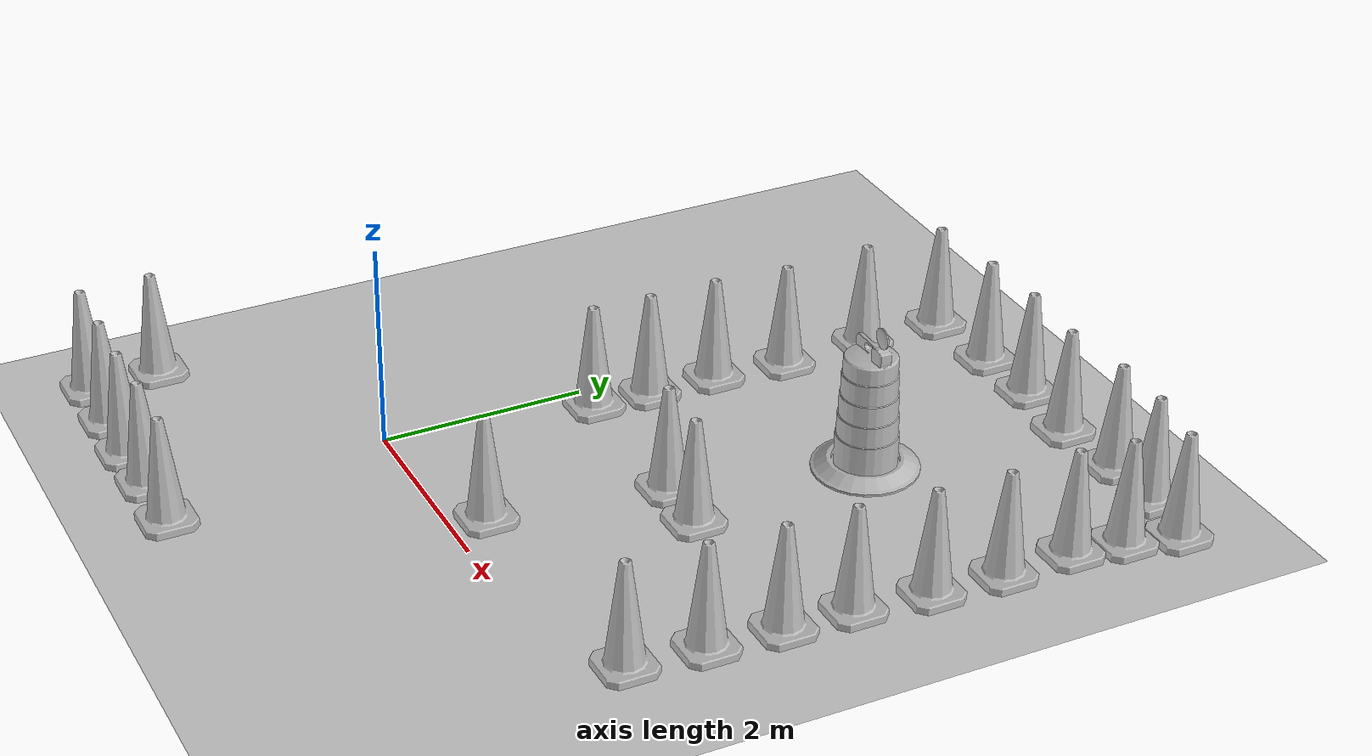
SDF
<sdf version="1.7">
 <world name="default">
  <light name="sun" type="directional">
   <pose>0 0 10 0 -0 0</pose>
   <diffuse>0.8 0.8 0.8 1</diffuse>
   <specular>0.2 0.2 0.2 1</specular>
   <attenuation>
    <range>1000</range>
    <constant>0.9</constant>
    <linear>0.01</linear>
    <quadratic>0.001</quadratic>
   </attenuation>
   <direction>-0.5 0.1 -0.9</direction>
   <spot><inner_angle>0</inner_angle><outer_angle>0</outer_angle><falloff>0</falloff></spot>
  </light>
  <model name="ground_plane">
   <static>1</static>
   <link name="link">
    <collision name="collision">
     <geometry><plane><normal>0 0 1</normal><size>100 100</size></plane></geometry>
     <surface>
      <contact><collide_bitmask>65535</collide_bitmask></contact>
      <friction><ode><mu>100</mu><mu2>50</mu2></ode></friction>
     </surface>
    </collision>
    <visual name="visual">
     <cast_shadows>0</cast_shadows>
     <geometry><plane><normal>0 0 1</normal><size>100 100</size></plane></geometry>
     <material>
      <script><uri>file://media/materials/scripts/gazebo.material</uri><name>Gazebo/Grey</name></script>
     </material>
    </visual>
   </link>
  </model>
  <gravity>0 0 -9.8</gravity>
  <magnetic_field>6e-06 2.3e-05 -4.2e-05</magnetic_field>
  <atmosphere type="adiabatic"/>
  <physics type="ode">
   <max_step_size>0.001</max_step_size>
   <real_time_factor>1</real_time_factor>
   <real_time_update_rate>1000</real_time_update_rate>
  </physics>
  <scene><ambient>0.4 0.4 0.4 1</ambient><background>0.7 0.7 0.7 1</background><shadows>1</shadows></scene>
  <audio><device>default</device></audio>
  <spherical_coordinates>
   <surface_model>EARTH_WGS84</surface_model>
   <latitude_deg>0</latitude_deg>
   <longitude_deg>0</longitude_deg>
   <elevation>0</elevation>
   <heading_deg>0</heading_deg>
  </spherical_coordinates>
  <model name="Construction Cone_0">
   <link name="link">
    <collision name="collision">
     <geometry>
      <mesh><scale>10 10 10</scale><uri>model://construction_cone/meshes/construction_cone.dae</uri></mesh>
     </geometry>
    </collision>
    <visual name="visual">
     <geometry>
      <mesh><scale>10 10 10</scale><uri>model://construction_cone/meshes/construction_cone.dae</uri></mesh>
     </geometry>
    </visual>
    <inertial>
     <inertia><ixx>1</ixx><ixy>0</ixy><ixz>0</ixz><iyy>1</iyy><iyz>0</iyz><izz>1</izz></inertia>
     <mass>1</mass>
    </inertial>
   </link>
   <pose>0.305482 2.01377 -0 0 -0 0</pose>
  </model>
  <model name="Construction Cone_6">
   <link name="link">
    <collision name="collision">
     <geometry>
      <mesh><scale>10 10 10</scale><uri>model://construction_cone/meshes/construction_cone.dae</uri></mesh>
     </geometry>
    </collision>
    <visual name="visual">
     <geometry>
      <mesh><scale>10 10 10</scale><uri>model://construction_cone/meshes/construction_cone.dae</uri></mesh>
     </geometry>
    </visual>
    <inertial>
     <inertia><ixx>1</ixx><ixy>0</ixy><ixz>0</ixz><iyy>1</iyy><iyz>0</iyz><izz>1</izz></inertia>
     <mass>1</mass>
    </inertial>
   </link>
   <pose>4.10748 0.507097 -0 0 -0 0</pose>
  </model>
  <model name="Construction Cone_7">
   <link name="link">
    <collision name="collision">
     <geometry>
      <mesh><scale>10 10 10</scale><uri>model://construction_cone/meshes/construction_cone.dae</uri></mesh>
     </geometry>
    </collision>
    <visual name="visual">
     <geometry>
      <mesh><scale>10 10 10</scale><uri>model://construction_cone/meshes/construction_cone.dae</uri></mesh>
     </geometry>
    </visual>
    <inertial>
     <inertia><ixx>1</ixx><ixy>0</ixy><ixz>0</ixz><iyy>1</iyy><iyz>0</iyz><izz>1</izz></inertia>
     <mass>1</mass>
    </inertial>
   </link>
   <pose>4.16705 1.2342 -0 0 -0 0</pose>
  </model>
  <model name="Construction Cone_8">
   <link name="link">
    <collision name="collision">
     <geometry>
      <mesh><scale>10 10 10</scale><uri>model://construction_cone/meshes/construction_cone.dae</uri></mesh>
     </geometry>
    </collision>
    <visual name="visual">
     <geometry>
      <mesh><scale>10 10 10</scale><uri>model://construction_cone/meshes/construction_cone.dae</uri></mesh>
     </geometry>
    </visual>
    <inertial>
     <inertia><ixx>1</ixx><ixy>0</ixy><ixz>0</ixz><iyy>1</iyy><iyz>0</iyz><izz>1</izz></inertia>
     <mass>1</mass>
    </inertial>
   </link>
   <pose>4.21335 1.93705 -1e-05 -0 -0 -0</pose>
  </model>
  <model name="Construction Cone_9">
   <link name="link">
    <collision name="collision">
     <geometry>
      <mesh><scale>10 10 10</scale><uri>model://construction_cone/meshes/construction_cone.dae</uri></mesh>
     </geometry>
    </collision>
    <visual name="visual">
     <geometry>
      <mesh><scale>10 10 10</scale><uri>model://construction_cone/meshes/construction_cone.dae</uri></mesh>
     </geometry>
    </visual>
    <inertial>
     <inertia><ixx>1</ixx><ixy>0</ixy><ixz>0</ixz><iyy>1</iyy><iyz>0</iyz><izz>1</izz></inertia>
     <mass>1</mass>
    </inertial>
   </link>
   <pose>4.23131 2.60474 -0 0 -0 0</pose>
  </model>
  <model name="Construction Cone_10">
   <link name="link">
    <collision name="collision">
     <geometry>
      <mesh><scale>10 10 10</scale><uri>model://construction_cone/meshes/construction_cone.dae</uri></mesh>
     </geometry>
    </collision>
    <visual name="visual">
     <geometry>
      <mesh><scale>10 10 10</scale><uri>model://construction_cone/meshes/construction_cone.dae</uri></mesh>
     </geometry>
    </visual>
    <inertial>
     <inertia><ixx>1</ixx><ixy>0</ixy><ixz>0</ixz><iyy>1</iyy><iyz>0</iyz><izz>1</izz></inertia>
     <mass>1</mass>
    </inertial>
   </link>
   <pose>1.8777 2.01453 -4e-06 4e-06 -1e-06 0</pose>
  </model>
  <model name="Construction Cone_11">
   <link name="link">
    <collision name="collision">
     <geometry>
      <mesh><scale>10 10 10</scale><uri>model://construction_cone/meshes/construction_cone.dae</uri></mesh>
     </geometry>
    </collision>
    <visual name="visual">
     <geometry>
      <mesh><scale>10 10 10</scale><uri>model://construction_cone/meshes/construction_cone.dae</uri></mesh>
     </geometry>
    </visual>
    <inertial>
     <inertia><ixx>1</ixx><ixy>0</ixy><ixz>0</ixz><iyy>1</iyy><iyz>0</iyz><izz>1</izz></inertia>
     <mass>1</mass>
    </inertial>
   </link>
   <pose>2.45999 1.98537 -0 0 -0 0</pose>
  </model>
  <model name="Construction Barrel_1">
   <link name="link">
    <inertial>
     <pose>0 0 0.4 0 -0 0</pose>
     <mass>500</mass>
     <inertia><ixx>51.2096</ixx><iyy>51.2096</iyy><izz>25</izz><ixy>0</ixy><ixz>0</ixz><iyz>0</iyz></inertia>
    </inertial>
    <collision name="collision">
     <geometry><mesh><uri>model://construction_barrel/meshes/construction_barrel.dae</uri></mesh></geometry>
    </collision>
    <visual name="visual">
     <geometry><mesh><uri>model://construction_barrel/meshes/construction_barrel.dae</uri></mesh></geometry>
    </visual>
   </link>
   <pose>2.30696 3.82705 1e-06 3e-06 2e-06 -5.1e-05</pose>
  </model>
  <model name="Construction Cone_12">
   <link name="link">
    <collision name="collision">
     <geometry>
      <mesh><scale>10 10 10</scale><uri>model://construction_cone/meshes/construction_cone.dae</uri></mesh>
     </geometry>
    </collision>
    <visual name="visual">
     <geometry>
      <mesh><scale>10 10 10</scale><uri>model://construction_cone/meshes/construction_cone.dae</uri></mesh>
     </geometry>
    </visual>
    <inertial>
     <inertia><ixx>1</ixx><ixy>0</ixy><ixz>0</ixz><iyy>1</iyy><iyz>0</iyz><izz>1</izz></inertia>
     <mass>1</mass>
    </inertial>
   </link>
   <pose>0.330189 2.5955 -1e-06 2e-06 2e-06 0</pose>
  </model>
  <model name="Construction Cone_13">
   <link name="link">
    <collision name="collision">
     <geometry>
      <mesh><scale>10 10 10</scale><uri>model://construction_cone/meshes/construction_cone.dae</uri></mesh>
     </geometry>
    </collision>
    <visual name="visual">
     <geometry>
      <mesh><scale>10 10 10</scale><uri>model://construction_cone/meshes/construction_cone.dae</uri></mesh>
     </geometry>
    </visual>
    <inertial>
     <inertia><ixx>1</ixx><ixy>0</ixy><ixz>0</ixz><iyy>1</iyy><iyz>0</iyz><izz>1</izz></inertia>
     <mass>1</mass>
    </inertial>
   </link>
   <pose>0.334488 3.27819 -1e-05 0 -0 0</pose>
  </model>
  <model name="Construction Cone_14">
   <link name="link">
    <collision name="collision">
     <geometry>
      <mesh><scale>10 10 10</scale><uri>model://construction_cone/meshes/construction_cone.dae</uri></mesh>
     </geometry>
    </collision>
    <visual name="visual">
     <geometry>
      <mesh><scale>10 10 10</scale><uri>model://construction_cone/meshes/construction_cone.dae</uri></mesh>
     </geometry>
    </visual>
    <inertial>
     <inertia><ixx>1</ixx><ixy>0</ixy><ixz>0</ixz><iyy>1</iyy><iyz>0</iyz><izz>1</izz></inertia>
     <mass>1</mass>
    </inertial>
   </link>
   <pose>0.399985 4.01572 -0 0 -0 0</pose>
  </model>
  <model name="Construction Cone_15">
   <link name="link">
    <collision name="collision">
     <geometry>
      <mesh><scale>10 10 10</scale><uri>model://construction_cone/meshes/construction_cone.dae</uri></mesh>
     </geometry>
    </collision>
    <visual name="visual">
     <geometry>
      <mesh><scale>10 10 10</scale><uri>model://construction_cone/meshes/construction_cone.dae</uri></mesh>
     </geometry>
    </visual>
    <inertial>
     <inertia><ixx>1</ixx><ixy>0</ixy><ixz>0</ixz><iyy>1</iyy><iyz>0</iyz><izz>1</izz></inertia>
     <mass>1</mass>
    </inertial>
   </link>
   <pose>0.374896 4.90857 -1e-06 2e-06 2e-06 0</pose>
  </model>
  <model name="Construction Cone_16">
   <link name="link">
    <collision name="collision">
     <geometry>
      <mesh><scale>10 10 10</scale><uri>model://construction_cone/meshes/construction_cone.dae</uri></mesh>
     </geometry>
    </collision>
    <visual name="visual">
     <geometry>
      <mesh><scale>10 10 10</scale><uri>model://construction_cone/meshes/construction_cone.dae</uri></mesh>
     </geometry>
    </visual>
    <inertial>
     <inertia><ixx>1</ixx><ixy>0</ixy><ixz>0</ixz><iyy>1</iyy><iyz>0</iyz><izz>1</izz></inertia>
     <mass>1</mass>
    </inertial>
   </link>
   <pose>0.374215 5.74576 -6e-06 2e-06 -0 0</pose>
  </model>
  <model name="Construction Cone_17">
   <link name="link">
    <collision name="collision">
     <geometry>
      <mesh><scale>10 10 10</scale><uri>model://construction_cone/meshes/construction_cone.dae</uri></mesh>
     </geometry>
    </collision>
    <visual name="visual">
     <geometry>
      <mesh><scale>10 10 10</scale><uri>model://construction_cone/meshes/construction_cone.dae</uri></mesh>
     </geometry>
    </visual>
    <inertial>
     <inertia><ixx>1</ixx><ixy>0</ixy><ixz>0</ixz><iyy>1</iyy><iyz>0</iyz><izz>1</izz></inertia>
     <mass>1</mass>
    </inertial>
   </link>
   <pose>1.17076 5.8266 -0 0 -0 0</pose>
  </model>
  <model name="Construction Cone_18">
   <link name="link">
    <collision name="collision">
     <geometry>
      <mesh><scale>10 10 10</scale><uri>model://construction_cone/meshes/construction_cone.dae</uri></mesh>
     </geometry>
    </collision>
    <visual name="visual">
     <geometry>
      <mesh><scale>10 10 10</scale><uri>model://construction_cone/meshes/construction_cone.dae</uri></mesh>
     </geometry>
    </visual>
    <inertial>
     <inertia><ixx>1</ixx><ixy>0</ixy><ixz>0</ixz><iyy>1</iyy><iyz>0</iyz><izz>1</izz></inertia>
     <mass>1</mass>
    </inertial>
   </link>
   <pose>1.86086 5.8586 -8e-06 -6e-06 0 0</pose>
  </model>
  <model name="Construction Cone_19">
   <link name="link">
    <collision name="collision">
     <geometry>
      <mesh><scale>10 10 10</scale><uri>model://construction_cone/meshes/construction_cone.dae</uri></mesh>
     </geometry>
    </collision>
    <visual name="visual">
     <geometry>
      <mesh><scale>10 10 10</scale><uri>model://construction_cone/meshes/construction_cone.dae</uri></mesh>
     </geometry>
    </visual>
    <inertial>
     <inertia><ixx>1</ixx><ixy>0</ixy><ixz>0</ixz><iyy>1</iyy><iyz>0</iyz><izz>1</izz></inertia>
     <mass>1</mass>
    </inertial>
   </link>
   <pose>2.59173 5.79612 -0 0 -0 0</pose>
  </model>
  <model name="Construction Cone_20">
   <link name="link">
    <collision name="collision">
     <geometry>
      <mesh><scale>10 10 10</scale><uri>model://construction_cone/meshes/construction_cone.dae</uri></mesh>
     </geometry>
    </collision>
    <visual name="visual">
     <geometry>
      <mesh><scale>10 10 10</scale><uri>model://construction_cone/meshes/construction_cone.dae</uri></mesh>
     </geometry>
    </visual>
    <inertial>
     <inertia><ixx>1</ixx><ixy>0</ixy><ixz>0</ixz><iyy>1</iyy><iyz>0</iyz><izz>1</izz></inertia>
     <mass>1</mass>
    </inertial>
   </link>
   <pose>3.30692 5.87135 -0 0 -0 0</pose>
  </model>
  <model name="Construction Cone_21">
   <link name="link">
    <collision name="collision">
     <geometry>
      <mesh><scale>10 10 10</scale><uri>model://construction_cone/meshes/construction_cone.dae</uri></mesh>
     </geometry>
    </collision>
    <visual name="visual">
     <geometry>
      <mesh><scale>10 10 10</scale><uri>model://construction_cone/meshes/construction_cone.dae</uri></mesh>
     </geometry>
    </visual>
    <inertial>
     <inertia><ixx>1</ixx><ixy>0</ixy><ixz>0</ixz><iyy>1</iyy><iyz>0</iyz><izz>1</izz></inertia>
     <mass>1</mass>
    </inertial>
   </link>
   <pose>3.90565 5.85644 -0 0 -0 0</pose>
  </model>
  <model name="Construction Cone_22">
   <link name="link">
    <collision name="collision">
     <geometry>
      <mesh><scale>10 10 10</scale><uri>model://construction_cone/meshes/construction_cone.dae</uri></mesh>
     </geometry>
    </collision>
    <visual name="visual">
     <geometry>
      <mesh><scale>10 10 10</scale><uri>model://construction_cone/meshes/construction_cone.dae</uri></mesh>
     </geometry>
    </visual>
    <inertial>
     <inertia><ixx>1</ixx><ixy>0</ixy><ixz>0</ixz><iyy>1</iyy><iyz>0</iyz><izz>1</izz></inertia>
     <mass>1</mass>
    </inertial>
   </link>
   <pose>4.50482 5.75234 0 0 -0 0.000687</pose>
  </model>
  <model name="Construction Cone_23">
   <link name="link">
    <collision name="collision">
     <geometry>
      <mesh><scale>10 10 10</scale><uri>model://construction_cone/meshes/construction_cone.dae</uri></mesh>
     </geometry>
    </collision>
    <visual name="visual">
     <geometry>
      <mesh><scale>10 10 10</scale><uri>model://construction_cone/meshes/construction_cone.dae</uri></mesh>
     </geometry>
    </visual>
    <inertial>
     <inertia><ixx>1</ixx><ixy>0</ixy><ixz>0</ixz><iyy>1</iyy><iyz>0</iyz><izz>1</izz></inertia>
     <mass>1</mass>
    </inertial>
   </link>
   <pose>4.30921 3.32698 -0 0 -0 0</pose>
  </model>
  <model name="Construction Cone_24">
   <link name="link">
    <collision name="collision">
     <geometry>
      <mesh><scale>10 10 10</scale><uri>model://construction_cone/meshes/construction_cone.dae</uri></mesh>
     </geometry>
    </collision>
    <visual name="visual">
     <geometry>
      <mesh><scale>10 10 10</scale><uri>model://construction_cone/meshes/construction_cone.dae</uri></mesh>
     </geometry>
    </visual>
    <inertial>
     <inertia><ixx>1</ixx><ixy>0</ixy><ixz>0</ixz><iyy>1</iyy><iyz>0</iyz><izz>1</izz></inertia>
     <mass>1</mass>
    </inertial>
   </link>
   <pose>4.3444 4.03333 -0 0 -1e-06 0</pose>
  </model>
  <model name="Construction Cone_25">
   <link name="link">
    <collision name="collision">
     <geometry>
      <mesh><scale>10 10 10</scale><uri>model://construction_cone/meshes/construction_cone.dae</uri></mesh>
     </geometry>
    </collision>
    <visual name="visual">
     <geometry>
      <mesh><scale>10 10 10</scale><uri>model://construction_cone/meshes/construction_cone.dae</uri></mesh>
     </geometry>
    </visual>
    <inertial>
     <inertia><ixx>1</ixx><ixy>0</ixy><ixz>0</ixz><iyy>1</iyy><iyz>0</iyz><izz>1</izz></inertia>
     <mass>1</mass>
    </inertial>
   </link>
   <pose>4.31795 4.73899 -1e-05 -1e-06 0 0</pose>
  </model>
  <model name="Construction Cone_26">
   <link name="link">
    <collision name="collision">
     <geometry>
      <mesh><scale>10 10 10</scale><uri>model://construction_cone/meshes/construction_cone.dae</uri></mesh>
     </geometry>
    </collision>
    <visual name="visual">
     <geometry>
      <mesh><scale>10 10 10</scale><uri>model://construction_cone/meshes/construction_cone.dae</uri></mesh>
     </geometry>
    </visual>
    <inertial>
     <inertia><ixx>1</ixx><ixy>0</ixy><ixz>0</ixz><iyy>1</iyy><iyz>0</iyz><izz>1</izz></inertia>
     <mass>1</mass>
    </inertial>
   </link>
   <pose>4.39203 5.24932 -3e-06 -3e-06 -1e-06 0.000668</pose>
  </model>
  <model name="Construction Cone">
   <link name="link">
    <collision name="collision">
     <geometry>
      <mesh><scale>10 10 10</scale><uri>model://construction_cone/meshes/construction_cone.dae</uri></mesh>
     </geometry>
    </collision>
    <visual name="visual">
     <geometry>
      <mesh><scale>10 10 10</scale><uri>model://construction_cone/meshes/construction_cone.dae</uri></mesh>
     </geometry>
    </visual>
    <inertial>
     <inertia><ixx>1</ixx><ixy>0</ixy><ixz>0</ixz><iyy>1</iyy><iyz>0</iyz><izz>1</izz></inertia>
     <mass>1</mass>
    </inertial>
   </link>
   <pose>-0.811562 -2.24327 -1e-05 -1e-06 0 0</pose>
  </model>
  <model name="Construction Cone_27">
   <link name="link">
    <collision name="collision">
     <geometry>
      <mesh><scale>10 10 10</scale><uri>model://construction_cone/meshes/construction_cone.dae</uri></mesh>
     </geometry>
    </collision>
    <visual name="visual">
     <geometry>
      <mesh><scale>10 10 10</scale><uri>model://construction_cone/meshes/construction_cone.dae</uri></mesh>
     </geometry>
    </visual>
    <inertial>
     <inertia><ixx>1</ixx><ixy>0</ixy><ixz>0</ixz><iyy>1</iyy><iyz>0</iyz><izz>1</izz></inertia>
     <mass>1</mass>
    </inertial>
   </link>
   <pose>-1.41542 -2.22586 -0 0 -0 0</pose>
  </model>
  <model name="Construction Cone_28">
   <link name="link">
    <collision name="collision">
     <geometry>
      <mesh><scale>10 10 10</scale><uri>model://construction_cone/meshes/construction_cone.dae</uri></mesh>
     </geometry>
    </collision>
    <visual name="visual">
     <geometry>
      <mesh><scale>10 10 10</scale><uri>model://construction_cone/meshes/construction_cone.dae</uri></mesh>
     </geometry>
    </visual>
    <inertial>
     <inertia><ixx>1</ixx><ixy>0</ixy><ixz>0</ixz><iyy>1</iyy><iyz>0</iyz><izz>1</izz></inertia>
     <mass>1</mass>
    </inertial>
   </link>
   <pose>-2.04508 -2.21988 -0 0 -0 0</pose>
  </model>
  <model name="Construction Cone_29">
   <link name="link">
    <collision name="collision">
     <geometry>
      <mesh><scale>10 10 10</scale><uri>model://construction_cone/meshes/construction_cone.dae</uri></mesh>
     </geometry>
    </collision>
    <visual name="visual">
     <geometry>
      <mesh><scale>10 10 10</scale><uri>model://construction_cone/meshes/construction_cone.dae</uri></mesh>
     </geometry>
    </visual>
    <inertial>
     <inertia><ixx>1</ixx><ixy>0</ixy><ixz>0</ixz><iyy>1</iyy><iyz>0</iyz><izz>1</izz></inertia>
     <mass>1</mass>
    </inertial>
   </link>
   <pose>-0.237967 -2.22784 -0 0 -0 0</pose>
  </model>
  <model name="Construction Cone_30">
   <link name="link">
    <collision name="collision">
     <geometry>
      <mesh><scale>10 10 10</scale><uri>model://construction_cone/meshes/construction_cone.dae</uri></mesh>
     </geometry>
    </collision>
    <visual name="visual">
     <geometry>
      <mesh><scale>10 10 10</scale><uri>model://construction_cone/meshes/construction_cone.dae</uri></mesh>
     </geometry>
    </visual>
    <inertial>
     <inertia><ixx>1</ixx><ixy>0</ixy><ixz>0</ixz><iyy>1</iyy><iyz>0</iyz><izz>1</izz></inertia>
     <mass>1</mass>
    </inertial>
   </link>
   <pose>0.416206 -2.24539 -4e-06 4e-06 -1e-06 0</pose>
  </model>
  <model name="Construction Cone_1">
   <link name="link">
    <collision name="collision">
     <geometry>
      <mesh><scale>10 10 10</scale><uri>model://construction_cone/meshes/construction_cone.dae</uri></mesh>
     </geometry>
    </collision>
    <visual name="visual">
     <geometry>
      <mesh><scale>10 10 10</scale><uri>model://construction_cone/meshes/construction_cone.dae</uri></mesh>
     </geometry>
    </visual>
    <inertial>
     <inertia><ixx>1</ixx><ixy>0</ixy><ixz>0</ixz><iyy>1</iyy><iyz>0</iyz><izz>1</izz></inertia>
     <mass>1</mass>
    </inertial>
   </link>
   <pose>-2.07009 -1.52968 -0 0 -0 0</pose>
  </model>
  <model name="Construction Cone_2">
   <link name="link">
    <collision name="collision">
     <geometry>
      <mesh><scale>10 10 10</scale><uri>model://construction_cone/meshes/construction_cone.dae</uri></mesh>
     </geometry>
    </collision>
    <visual name="visual">
     <geometry>
      <mesh><scale>10 10 10</scale><uri>model://construction_cone/meshes/construction_cone.dae</uri></mesh>
     </geometry>
    </visual>
    <inertial>
     <inertia><ixx>1</ixx><ixy>0</ixy><ixz>0</ixz><iyy>1</iyy><iyz>0</iyz><izz>1</izz></inertia>
     <mass>1</mass>
    </inertial>
   </link>
   <pose>1.60985 0.340333 -0 0 -1e-06 0</pose>
  </model>
 </world>
</sdf>
